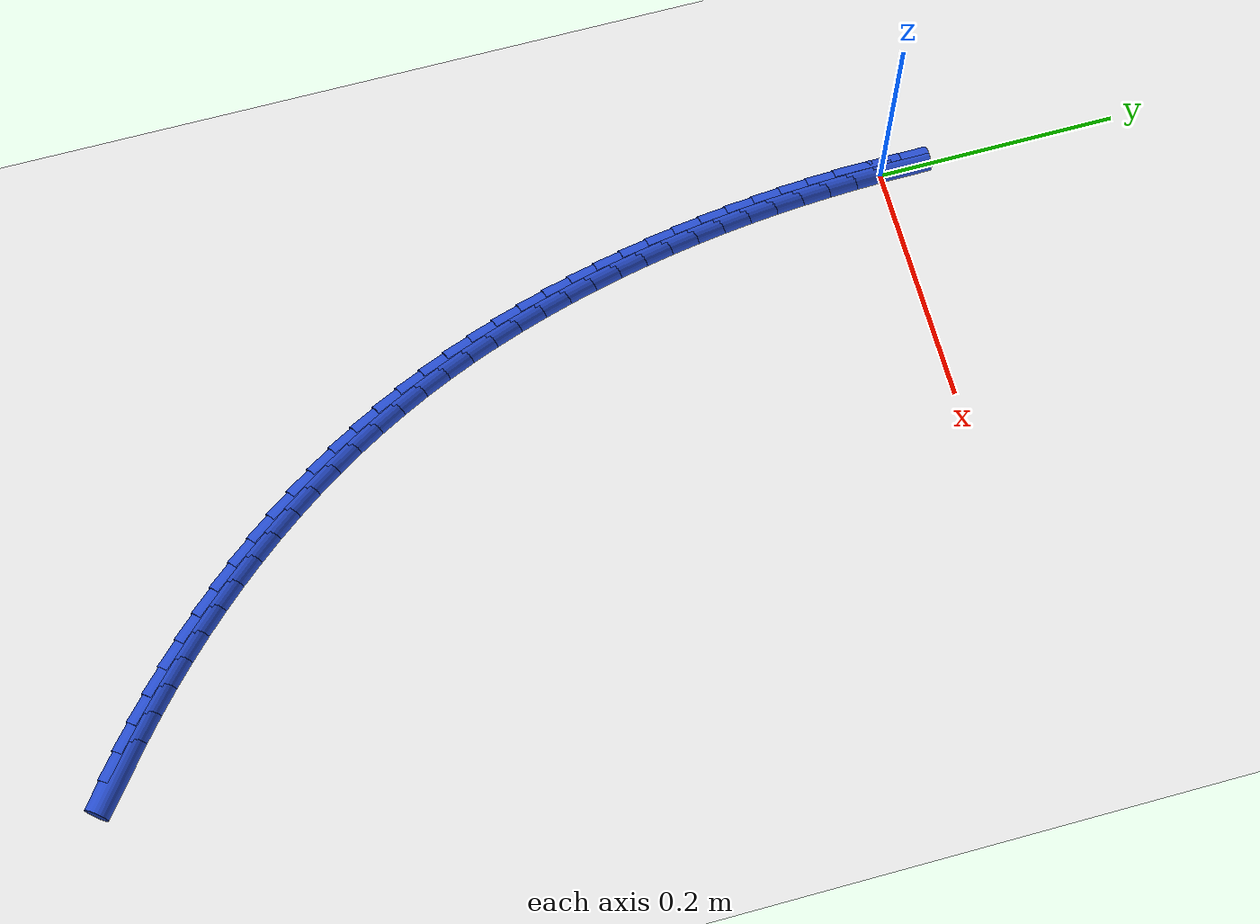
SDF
<sdf version="1.6">
 <world name="default">
  <model name="ground_plane">
   <static>1</static>
   <link name="link">
    <collision name="collision">
     <geometry><plane><normal>0 0 1</normal><size>100 100</size></plane></geometry>
     <surface><friction><ode><mu>100</mu><mu2>50</mu2></ode></friction></surface>
    </collision>
    <visual name="visual">
     <cast_shadows>0</cast_shadows>
     <geometry><plane><normal>0 0 1</normal><size>100 100</size></plane></geometry>
     <material>
      <script><uri>file://media/materials/scripts/gazebo.material</uri><name>Gazebo/WhiteGlow</name></script>
     </material>
    </visual>
   </link>
  </model>
  <model name="line">
   <link name="link_0">
    <pose>6.5052130349130266e-18 4.163336342344337e-17 0.01 0 1.57 -1.5608195058965737</pose>
    <collision name="collision">
     <geometry><cylinder><radius>0.01</radius><length>0.08</length></cylinder></geometry>
    </collision>
    <visual name="visual">
     <material>
      <script><name>Gazebo/Blue</name><uri>file://media/materials/scripts/gazebo.material</uri></script>
     </material>
     <geometry><cylinder><radius>0.01</radius><length>0.08</length></cylinder></geometry>
    </visual>
   </link>
   <link name="link_256">
    <pose>0.32568709282954966 -0.6946262562878215 0.01 0 1.57 -0.656693107425025</pose>
    <collision name="collision">
     <geometry><cylinder><radius>0.01</radius><length>0.08</length></cylinder></geometry>
    </collision>
    <visual name="visual">
     <material>
      <script><name>Gazebo/Blue</name><uri>file://media/materials/scripts/gazebo.material</uri></script>
     </material>
     <geometry><cylinder><radius>0.01</radius><length>0.08</length></cylinder></geometry>
    </visual>
   </link>
   <link name="link_257">
    <pose>0.30704853124052434 -0.6802592859161156 0.01 0 1.57 -0.6845378571284801</pose>
    <collision name="collision">
     <geometry><cylinder><radius>0.01</radius><length>0.08</length></cylinder></geometry>
    </collision>
    <visual name="visual">
     <material>
      <script><name>Gazebo/Blue</name><uri>file://media/materials/scripts/gazebo.material</uri></script>
     </material>
     <geometry><cylinder><radius>0.01</radius><length>0.08</length></cylinder></geometry>
    </visual>
   </link>
   <link name="link_258">
    <pose>0.2887992849294735 -0.665364353591312 0.01 0 1.57 -0.7125663793460556</pose>
    <collision name="collision">
     <geometry><cylinder><radius>0.01</radius><length>0.08</length></cylinder></geometry>
    </collision>
    <visual name="visual">
     <material>
      <script><name>Gazebo/Blue</name><uri>file://media/materials/scripts/gazebo.material</uri></script>
     </material>
     <geometry><cylinder><radius>0.01</radius><length>0.08</length></cylinder></geometry>
    </visual>
   </link>
   <link name="link_259">
    <pose>0.27096250068115507 -0.6499533553441375 0.01 0 1.57 -0.7407766076242138</pose>
    <collision name="collision">
     <geometry><cylinder><radius>0.01</radius><length>0.08</length></cylinder></geometry>
    </collision>
    <visual name="visual">
     <material>
      <script><name>Gazebo/Blue</name><uri>file://media/materials/scripts/gazebo.material</uri></script>
     </material>
     <geometry><cylinder><radius>0.01</radius><length>0.08</length></cylinder></geometry>
    </visual>
   </link>
   <link name="link_260">
    <pose>0.25356070801401226 -0.6340391612790671 0.01 0 1.57 -0.7692145284203266</pose>
    <collision name="collision">
     <geometry><cylinder><radius>0.01</radius><length>0.08</length></cylinder></geometry>
    </collision>
    <visual name="visual">
     <material>
      <script><name>Gazebo/Blue</name><uri>file://media/materials/scripts/gazebo.material</uri></script>
     </material>
     <geometry><cylinder><radius>0.01</radius><length>0.08</length></cylinder></geometry>
    </visual>
   </link>
   <link name="link_261">
    <pose>0.2366164364464885 -0.617634641500576 0.01 0 1.57 -0.7979253068499081</pose>
    <collision name="collision">
     <geometry><cylinder><radius>0.01</radius><length>0.08</length></cylinder></geometry>
    </collision>
    <visual name="visual">
     <material>
      <script><name>Gazebo/Blue</name><uri>file://media/materials/scripts/gazebo.material</uri></script>
     </material>
     <geometry><cylinder><radius>0.01</radius><length>0.08</length></cylinder></geometry>
    </visual>
   </link>
   <link name="link_262">
    <pose>0.22015221549702677 -0.600752666113139 0.01 0 1.57 -0.8269531783015631</pose>
    <collision name="collision">
     <geometry><cylinder><radius>0.01</radius><length>0.08</length></cylinder></geometry>
    </collision>
    <visual name="visual">
     <material>
      <script><name>Gazebo/Blue</name><uri>file://media/materials/scripts/gazebo.material</uri></script>
     </material>
     <geometry><cylinder><radius>0.01</radius><length>0.08</length></cylinder></geometry>
    </visual>
   </link>
   <link name="link_263">
    <pose>0.2041905746840705 -0.5834061052212314 0.01 0 1.57 -0.8563413046199394</pose>
    <collision name="collision">
     <geometry><cylinder><radius>0.01</radius><length>0.08</length></cylinder></geometry>
    </collision>
    <visual name="visual">
     <material>
      <script><name>Gazebo/Blue</name><uri>file://media/materials/scripts/gazebo.material</uri></script>
     </material>
     <geometry><cylinder><radius>0.01</radius><length>0.08</length></cylinder></geometry>
    </visual>
   </link>
   <link name="link_264">
    <pose>0.18875404352606295 -0.5656078289293278 0.01 0 1.57 -0.8861315899896894</pose>
    <collision name="collision">
     <geometry><cylinder><radius>0.01</radius><length>0.08</length></cylinder></geometry>
    </collision>
    <visual name="visual">
     <material>
      <script><name>Gazebo/Blue</name><uri>file://media/materials/scripts/gazebo.material</uri></script>
     </material>
     <geometry><cylinder><radius>0.01</radius><length>0.08</length></cylinder></geometry>
    </visual>
   </link>
   <link name="link_265">
    <pose>0.17386515154144788 -0.5473707073419044 0.01 0 1.57 -0.9163644518550015</pose>
    <collision name="collision">
     <geometry><cylinder><radius>0.01</radius><length>0.08</length></cylinder></geometry>
    </collision>
    <visual name="visual">
     <material>
      <script><name>Gazebo/Blue</name><uri>file://media/materials/scripts/gazebo.material</uri></script>
     </material>
     <geometry><cylinder><radius>0.01</radius><length>0.08</length></cylinder></geometry>
    </visual>
   </link>
   <link name="link_266">
    <pose>0.1595464282486675 -0.5287076105634346 0.01 0 1.57 -0.9470785425909463</pose>
    <collision name="collision">
     <geometry><cylinder><radius>0.01</radius><length>0.08</length></cylinder></geometry>
    </collision>
    <visual name="visual">
     <material>
      <script><name>Gazebo/Blue</name><uri>file://media/materials/scripts/gazebo.material</uri></script>
     </material>
     <geometry><cylinder><radius>0.01</radius><length>0.08</length></cylinder></geometry>
    </visual>
   </link>
   <link name="link_267">
    <pose>0.14582040316616565 -0.5096314086983944 0.01 0 1.57 -0.9783104182764895</pose>
    <collision name="collision">
     <geometry><cylinder><radius>0.01</radius><length>0.08</length></cylinder></geometry>
    </collision>
    <visual name="visual">
     <material>
      <script><name>Gazebo/Blue</name><uri>file://media/materials/scripts/gazebo.material</uri></script>
     </material>
     <geometry><cylinder><radius>0.01</radius><length>0.08</length></cylinder></geometry>
    </visual>
   </link>
   <link name="link_268">
    <pose>0.1327096058123855 -0.4901549718512583 0.01 0 1.57 -1.0100941518810562</pose>
    <collision name="collision">
     <geometry><cylinder><radius>0.01</radius><length>0.08</length></cylinder></geometry>
    </collision>
    <visual name="visual">
     <material>
      <script><name>Gazebo/Blue</name><uri>file://media/materials/scripts/gazebo.material</uri></script>
     </material>
     <geometry><cylinder><radius>0.01</radius><length>0.08</length></cylinder></geometry>
    </visual>
   </link>
   <link name="link_269">
    <pose>0.12023656570577036 -0.4702911701265018 0.01 0 1.57 -1.042460889550104</pose>
    <collision name="collision">
     <geometry><cylinder><radius>0.01</radius><length>0.08</length></cylinder></geometry>
    </collision>
    <visual name="visual">
     <material>
      <script><name>Gazebo/Blue</name><uri>file://media/materials/scripts/gazebo.material</uri></script>
     </material>
     <geometry><cylinder><radius>0.01</radius><length>0.08</length></cylinder></geometry>
    </visual>
   </link>
   <link name="link_270">
    <pose>0.10842381236476349 -0.4500528736285998 0.01 0 1.57 -1.075438350537478</pose>
    <collision name="collision">
     <geometry><cylinder><radius>0.01</radius><length>0.08</length></cylinder></geometry>
    </collision>
    <visual name="visual">
     <material>
      <script><name>Gazebo/Blue</name><uri>file://media/materials/scripts/gazebo.material</uri></script>
     </material>
     <geometry><cylinder><radius>0.01</radius><length>0.08</length></cylinder></geometry>
    </visual>
   </link>
   <link name="link_271">
    <pose>0.09729387530780816 -0.4294529524620273 0.01 0 1.57 -1.1089972759537248</pose>
    <collision name="collision">
     <geometry><cylinder><radius>0.01</radius><length>0.08</length></cylinder></geometry>
    </collision>
    <visual name="visual">
     <material>
      <script><name>Gazebo/Blue</name><uri>file://media/materials/scripts/gazebo.material</uri></script>
     </material>
     <geometry><cylinder><radius>0.01</radius><length>0.08</length></cylinder></geometry>
    </visual>
   </link>
   <link name="link_272">
    <pose>0.08686811580418058 -0.4085047126425042 0.01 0 1.57 -1.142141972358516</pose>
    <collision name="collision">
     <geometry><cylinder><radius>0.01</radius><length>0.08</length></cylinder></geometry>
    </collision>
    <visual name="visual">
     <material>
      <script><name>Gazebo/Blue</name><uri>file://media/materials/scripts/gazebo.material</uri></script>
     </material>
     <geometry><cylinder><radius>0.01</radius><length>0.08</length></cylinder></geometry>
    </visual>
   </link>
   <link name="link_273">
    <pose>0.07714561090009184 -0.38722977514431584 0.01 0 1.57 -1.173968441628726</pose>
    <collision name="collision">
     <geometry><cylinder><radius>0.01</radius><length>0.08</length></cylinder></geometry>
    </collision>
    <visual name="visual">
     <material>
      <script><name>Gazebo/Blue</name><uri>file://media/materials/scripts/gazebo.material</uri></script>
     </material>
     <geometry><cylinder><radius>0.01</radius><length>0.08</length></cylinder></geometry>
    </visual>
   </link>
   <link name="link_274">
    <pose>0.06810543750753233 -0.36565722363348496 0.01 0 1.57 -1.2044539550929947</pose>
    <collision name="collision">
     <geometry><cylinder><radius>0.01</radius><length>0.08</length></cylinder></geometry>
    </collision>
    <visual name="visual">
     <material>
      <script><name>Gazebo/Blue</name><uri>file://media/materials/scripts/gazebo.material</uri></script>
     </material>
     <geometry><cylinder><radius>0.01</radius><length>0.08</length></cylinder></geometry>
    </visual>
   </link>
   <link name="link_275">
    <pose>0.059725962782398306 -0.34381640660880375 0.01 0 1.57 -1.2336171688386872</pose>
    <collision name="collision">
     <geometry><cylinder><radius>0.01</radius><length>0.08</length></cylinder></geometry>
    </collision>
    <visual name="visual">
     <material>
      <script><name>Gazebo/Blue</name><uri>file://media/materials/scripts/gazebo.material</uri></script>
     </material>
     <geometry><cylinder><radius>0.01</radius><length>0.08</length></cylinder></geometry>
    </visual>
   </link>
   <link name="link_276">
    <pose>0.05198555388058607 -0.3217366725690648 0.01 0 1.57 -1.2614841604572968</pose>
    <collision name="collision">
     <geometry><cylinder><radius>0.01</radius><length>0.08</length></cylinder></geometry>
    </collision>
    <visual name="visual">
     <material>
      <script><name>Gazebo/Blue</name><uri>file://media/materials/scripts/gazebo.material</uri></script>
     </material>
     <geometry><cylinder><radius>0.01</radius><length>0.08</length></cylinder></geometry>
    </visual>
   </link>
   <link name="link_277">
    <pose>0.04486257795799185 -0.2994473700130603 0.01 0 1.57 -1.288086804904727</pose>
    <collision name="collision">
     <geometry><cylinder><radius>0.01</radius><length>0.08</length></cylinder></geometry>
    </collision>
    <visual name="visual">
     <material>
      <script><name>Gazebo/Blue</name><uri>file://media/materials/scripts/gazebo.material</uri></script>
     </material>
     <geometry><cylinder><radius>0.01</radius><length>0.08</length></cylinder></geometry>
    </visual>
   </link>
   <link name="link_278">
    <pose>0.03833540217051196 -0.27697784743958276 0.01 0 1.57 -1.313461316113776</pose>
    <collision name="collision">
     <geometry><cylinder><radius>0.01</radius><length>0.08</length></cylinder></geometry>
    </collision>
    <visual name="visual">
     <material>
      <script><name>Gazebo/Blue</name><uri>file://media/materials/scripts/gazebo.material</uri></script>
     </material>
     <geometry><cylinder><radius>0.01</radius><length>0.08</length></cylinder></geometry>
    </visual>
   </link>
   <link name="link_279">
    <pose>0.03238239367404265 -0.2543574533474246 0.01 0 1.57 -1.3376469643942197</pose>
    <collision name="collision">
     <geometry><cylinder><radius>0.01</radius><length>0.08</length></cylinder></geometry>
    </collision>
    <visual name="visual">
     <material>
      <script><name>Gazebo/Blue</name><uri>file://media/materials/scripts/gazebo.material</uri></script>
     </material>
     <geometry><cylinder><radius>0.01</radius><length>0.08</length></cylinder></geometry>
    </visual>
   </link>
   <link name="link_280">
    <pose>0.026981919624480367 -0.23161553623537884 0.01 0 1.57 -1.36068730422512</pose>
    <collision name="collision">
     <geometry><cylinder><radius>0.01</radius><length>0.08</length></cylinder></geometry>
    </collision>
    <visual name="visual">
     <material>
      <script><name>Gazebo/Blue</name><uri>file://media/materials/scripts/gazebo.material</uri></script>
     </material>
     <geometry><cylinder><radius>0.01</radius><length>0.08</length></cylinder></geometry>
    </visual>
   </link>
   <link name="link_281">
    <pose>0.022112381855169977 -0.20878134576626367 0.01 0 1.57 -1.382848392884655</pose>
    <collision name="collision">
     <geometry><cylinder><radius>0.01</radius><length>0.08</length></cylinder></geometry>
    </collision>
    <visual name="visual">
     <material>
      <script><name>Gazebo/Blue</name><uri>file://media/materials/scripts/gazebo.material</uri></script>
     </material>
     <geometry><cylinder><radius>0.01</radius><length>0.08</length></cylinder></geometry>
    </visual>
   </link>
   <link name="link_282">
    <pose>0.017755629807365565 -0.18587430539907326 0.01 0 1.57 -1.404545239822419</pose>
    <collision name="collision">
     <geometry><cylinder><radius>0.01</radius><length>0.08</length></cylinder></geometry>
    </collision>
    <visual name="visual">
     <material>
      <script><name>Gazebo/Blue</name><uri>file://media/materials/scripts/gazebo.material</uri></script>
     </material>
     <geometry><cylinder><radius>0.01</radius><length>0.08</length></cylinder></geometry>
    </visual>
   </link>
   <link name="link_283">
    <pose>0.013899839760858955 -0.16289580614633525 0.01 0 1.57 -1.4257951110817957</pose>
    <collision name="collision">
     <geometry><cylinder><radius>0.01</radius><length>0.08</length></cylinder></geometry>
    </collision>
    <visual name="visual">
     <material>
      <script><name>Gazebo/Blue</name><uri>file://media/materials/scripts/gazebo.material</uri></script>
     </material>
     <geometry><cylinder><radius>0.01</radius><length>0.08</length></cylinder></geometry>
    </visual>
   </link>
   <link name="link_284">
    <pose>0.010533865936225717 -0.1398453067868373 0.01 0 1.57 -1.446572345270174</pose>
    <collision name="collision">
     <geometry><cylinder><radius>0.01</radius><length>0.08</length></cylinder></geometry>
    </collision>
    <visual name="visual">
     <material>
      <script><name>Gazebo/Blue</name><uri>file://media/materials/scripts/gazebo.material</uri></script>
     </material>
     <geometry><cylinder><radius>0.01</radius><length>0.08</length></cylinder></geometry>
    </visual>
   </link>
   <link name="link_285">
    <pose>0.0076465625540414455 -0.1167222660993671 0.01 0 1.57 -1.4668540437216657</pose>
    <collision name="collision">
     <geometry><cylinder><radius>0.01</radius><length>0.08</length></cylinder></geometry>
    </collision>
    <visual name="visual">
     <material>
      <script><name>Gazebo/Blue</name><uri>file://media/materials/scripts/gazebo.material</uri></script>
     </material>
     <geometry><cylinder><radius>0.01</radius><length>0.08</length></cylinder></geometry>
    </visual>
   </link>
   <link name="link_286">
    <pose>0.00522678383488172 -0.09352614286271226 0.01 0 1.57 -1.4866200645399488</pose>
    <collision name="collision">
     <geometry><cylinder><radius>0.01</radius><length>0.08</length></cylinder></geometry>
    </collision>
    <visual name="visual">
     <material>
      <script><name>Gazebo/Blue</name><uri>file://media/materials/scripts/gazebo.material</uri></script>
     </material>
     <geometry><cylinder><radius>0.01</radius><length>0.08</length></cylinder></geometry>
    </visual>
   </link>
   <link name="link_287">
    <pose>0.00326338399932213 -0.07025639585566046 0.01 0 1.57 -1.5058529800361695</pose>
    <collision name="collision">
     <geometry><cylinder><radius>0.01</radius><length>0.08</length></cylinder></geometry>
    </collision>
    <visual name="visual">
     <material>
      <script><name>Gazebo/Blue</name><uri>file://media/materials/scripts/gazebo.material</uri></script>
     </material>
     <geometry><cylinder><radius>0.01</radius><length>0.08</length></cylinder></geometry>
    </visual>
   </link>
   <link name="link_288">
    <pose>0.0017452172679382578 -0.04691248385699939 0.01 0 1.57 -1.5245380020282449</pose>
    <collision name="collision">
     <geometry><cylinder><radius>0.01</radius><length>0.08</length></cylinder></geometry>
    </collision>
    <visual name="visual">
     <material>
      <script><name>Gazebo/Blue</name><uri>file://media/materials/scripts/gazebo.material</uri></script>
     </material>
     <geometry><cylinder><radius>0.01</radius><length>0.08</length></cylinder></geometry>
    </visual>
   </link>
   <link name="link_289">
    <pose>0.0006611378613056904 -0.02349386564551671 0.01 0 1.57 -1.5426628797969921</pose>
    <collision name="collision">
     <geometry><cylinder><radius>0.01</radius><length>0.08</length></cylinder></geometry>
    </collision>
    <visual name="visual">
     <material>
      <script><name>Gazebo/Blue</name><uri>file://media/materials/scripts/gazebo.material</uri></script>
     </material>
     <geometry><cylinder><radius>0.01</radius><length>0.08</length></cylinder></geometry>
    </visual>
   </link>
   <link name="link_290">
    <pose>1.1709383462843448e-17 -4.85722573273506e-17 0.01 0 1.57 -1.5602177756114755</pose>
    <collision name="collision">
     <geometry><cylinder><radius>0.01</radius><length>0.08</length></cylinder></geometry>
    </collision>
    <visual name="visual">
     <material>
      <script><name>Gazebo/Blue</name><uri>file://media/materials/scripts/gazebo.material</uri></script>
     </material>
     <geometry><cylinder><radius>0.01</radius><length>0.08</length></cylinder></geometry>
    </visual>
   </link>
  </model>
 </world>
</sdf>
